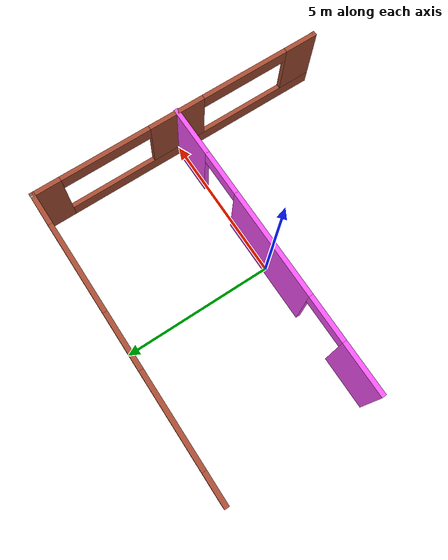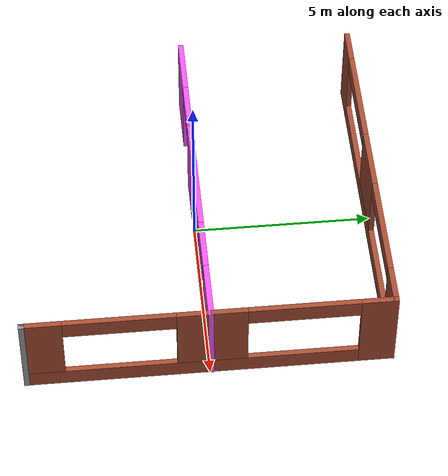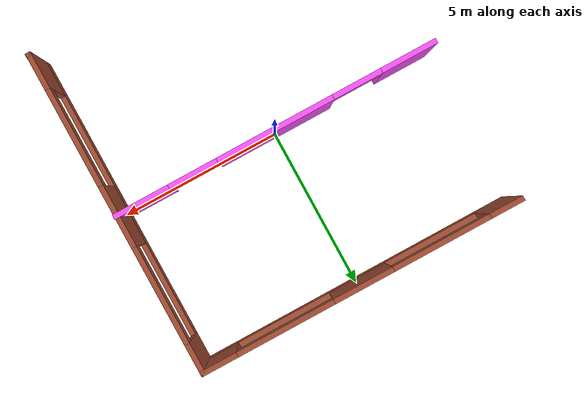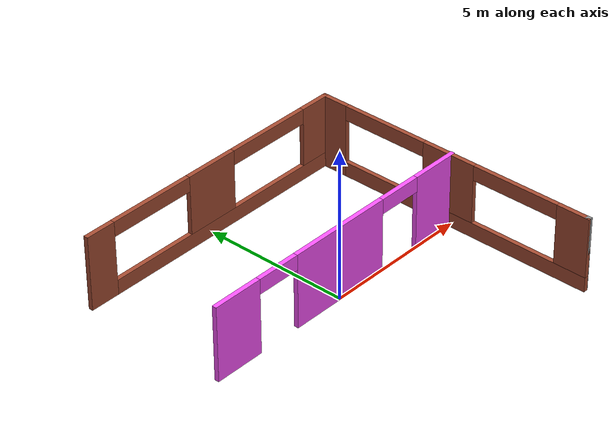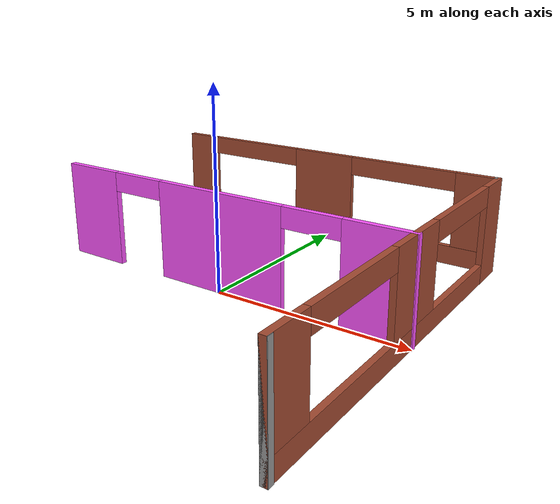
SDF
<sdf version="1.6">
 <model name="building">
  <link name="Wall_14">
   <pose>0.013 0.038 0 0 -0 0</pose>
   <visual name="Wall_14_Visual_0">
    <pose>-4.14875 0 1.25 0 -0 0</pose>
    <geometry><box><size>1.7025 0.15 2.5</size></box></geometry>
    <material>
     <script><uri>file://media/materials/scripts/gazebo.material</uri><name>Gazebo/Grey</name></script>
     <ambient>1 0.333333 1 1</ambient>
     <shader type="pixel"/>
     <diffuse>0.7 0.7 0.7 1</diffuse>
     <specular>0.01 0.01 0.01 1</specular>
     <emissive>0 0 0 1</emissive>
    </material>
    <meta><layer>0</layer></meta>
   </visual>
   <visual name="Wall_14_Visual_1">
    <pose>-0.00051 0 1.25 0 -0 0</pose>
    <geometry><box><size>3.59398 0.15 2.5</size></box></geometry>
    <material>
     <script><uri>file://media/materials/scripts/gazebo.material</uri><name>Gazebo/Grey</name></script>
     <ambient>1 0.333333 1 1</ambient>
     <shader type="pixel"/>
     <diffuse>0.7 0.7 0.7 1</diffuse>
     <specular>0.01 0.01 0.01 1</specular>
     <emissive>0 0 0 1</emissive>
    </material>
    <meta><layer>0</layer></meta>
   </visual>
   <visual name="Wall_14_Visual_2">
    <pose>4.14824 0 1.25 0 -0 0</pose>
    <geometry><box><size>1.70352 0.15 2.5</size></box></geometry>
    <material>
     <script><uri>file://media/materials/scripts/gazebo.material</uri><name>Gazebo/Grey</name></script>
     <ambient>1 0.333333 1 1</ambient>
     <shader type="pixel"/>
     <diffuse>0.7 0.7 0.7 1</diffuse>
     <specular>0.01 0.01 0.01 1</specular>
     <emissive>0 0 0 1</emissive>
    </material>
    <meta><layer>0</layer></meta>
   </visual>
   <visual name="Wall_14_Visual_4">
    <pose>2.54648 0 2.25 0 -0 0</pose>
    <geometry><box><size>1.5 0.15 0.5</size></box></geometry>
    <material>
     <script><uri>file://media/materials/scripts/gazebo.material</uri><name>Gazebo/Grey</name></script>
     <ambient>1 0.333333 1 1</ambient>
     <shader type="pixel"/>
     <diffuse>0.7 0.7 0.7 1</diffuse>
     <specular>0.01 0.01 0.01 1</specular>
     <emissive>0 0 0 1</emissive>
    </material>
    <meta><layer>0</layer></meta>
   </visual>
   <visual name="Wall_14_Visual_3">
    <pose>-2.5475 0 2.25 0 -0 0</pose>
    <geometry><box><size>1.5 0.15 0.5</size></box></geometry>
    <material>
     <script><uri>file://media/materials/scripts/gazebo.material</uri><name>Gazebo/Grey</name></script>
     <ambient>1 0.333333 1 1</ambient>
     <shader type="pixel"/>
     <diffuse>0.7 0.7 0.7 1</diffuse>
     <specular>0.01 0.01 0.01 1</specular>
     <emissive>0 0 0 1</emissive>
    </material>
    <meta><layer>0</layer></meta>
   </visual>
   <collision name="Wall_14_Collision_4">
    <pose>2.54648 0 2.25 0 -0 0</pose>
    <geometry><box><size>1.5 0.15 0.5</size></box></geometry>
    <surface>
     <friction>
      <ode><mu>1</mu><mu2>1</mu2><fdir1>0 0 0</fdir1><slip1>0</slip1><slip2>0</slip2></ode>
      <torsional>
       <coefficient>1</coefficient>
       <patch_radius>0</patch_radius>
       <surface_radius>0</surface_radius>
       <use_patch_radius>1</use_patch_radius>
       <ode><slip>0</slip></ode>
      </torsional>
     </friction>
     <bounce><restitution_coefficient>0</restitution_coefficient><threshold>1e+06</threshold></bounce>
     <contact>
      <collide_without_contact>0</collide_without_contact>
      <collide_without_contact_bitmask>1</collide_without_contact_bitmask>
      <collide_bitmask>1</collide_bitmask>
      <ode>
       <soft_cfm>0</soft_cfm>
       <soft_erp>0.2</soft_erp>
       <kp>1e+13</kp>
       <kd>1</kd>
       <max_vel>0.01</max_vel>
       <min_depth>0</min_depth>
      </ode>
      <bullet>
       <split_impulse>1</split_impulse>
       <split_impulse_penetration_threshold>-0.01</split_impulse_penetration_threshold>
       <soft_cfm>0</soft_cfm>
       <soft_erp>0.2</soft_erp>
       <kp>1e+13</kp>
       <kd>1</kd>
      </bullet>
     </contact>
    </surface>
   </collision>
   <collision name="Wall_14_Collision_3">
    <pose>-2.5475 0 2.25 0 -0 0</pose>
    <geometry><box><size>1.5 0.15 0.5</size></box></geometry>
    <surface>
     <friction>
      <ode><mu>1</mu><mu2>1</mu2><fdir1>0 0 0</fdir1><slip1>0</slip1><slip2>0</slip2></ode>
      <torsional>
       <coefficient>1</coefficient>
       <patch_radius>0</patch_radius>
       <surface_radius>0</surface_radius>
       <use_patch_radius>1</use_patch_radius>
       <ode><slip>0</slip></ode>
      </torsional>
     </friction>
     <bounce><restitution_coefficient>0</restitution_coefficient><threshold>1e+06</threshold></bounce>
     <contact>
      <collide_without_contact>0</collide_without_contact>
      <collide_without_contact_bitmask>1</collide_without_contact_bitmask>
      <collide_bitmask>1</collide_bitmask>
      <ode>
       <soft_cfm>0</soft_cfm>
       <soft_erp>0.2</soft_erp>
       <kp>1e+13</kp>
       <kd>1</kd>
       <max_vel>0.01</max_vel>
       <min_depth>0</min_depth>
      </ode>
      <bullet>
       <split_impulse>1</split_impulse>
       <split_impulse_penetration_threshold>-0.01</split_impulse_penetration_threshold>
       <soft_cfm>0</soft_cfm>
       <soft_erp>0.2</soft_erp>
       <kp>1e+13</kp>
       <kd>1</kd>
      </bullet>
     </contact>
    </surface>
   </collision>
   <collision name="Wall_14_Collision_0">
    <pose>-4.14875 0 1.25 0 -0 0</pose>
    <geometry><box><size>1.7025 0.15 2.5</size></box></geometry>
    <surface>
     <friction>
      <ode><mu>1</mu><mu2>1</mu2><fdir1>0 0 0</fdir1><slip1>0</slip1><slip2>0</slip2></ode>
      <torsional>
       <coefficient>1</coefficient>
       <patch_radius>0</patch_radius>
       <surface_radius>0</surface_radius>
       <use_patch_radius>1</use_patch_radius>
       <ode><slip>0</slip></ode>
      </torsional>
     </friction>
     <bounce><restitution_coefficient>0</restitution_coefficient><threshold>1e+06</threshold></bounce>
     <contact>
      <collide_without_contact>0</collide_without_contact>
      <collide_without_contact_bitmask>1</collide_without_contact_bitmask>
      <collide_bitmask>1</collide_bitmask>
      <ode>
       <soft_cfm>0</soft_cfm>
       <soft_erp>0.2</soft_erp>
       <kp>1e+13</kp>
       <kd>1</kd>
       <max_vel>0.01</max_vel>
       <min_depth>0</min_depth>
      </ode>
      <bullet>
       <split_impulse>1</split_impulse>
       <split_impulse_penetration_threshold>-0.01</split_impulse_penetration_threshold>
       <soft_cfm>0</soft_cfm>
       <soft_erp>0.2</soft_erp>
       <kp>1e+13</kp>
       <kd>1</kd>
      </bullet>
     </contact>
    </surface>
   </collision>
   <collision name="Wall_14_Collision_1">
    <pose>-0.00051 0 1.25 0 -0 0</pose>
    <geometry><box><size>3.59398 0.15 2.5</size></box></geometry>
    <surface>
     <friction>
      <ode><mu>1</mu><mu2>1</mu2><fdir1>0 0 0</fdir1><slip1>0</slip1><slip2>0</slip2></ode>
      <torsional>
       <coefficient>1</coefficient>
       <patch_radius>0</patch_radius>
       <surface_radius>0</surface_radius>
       <use_patch_radius>1</use_patch_radius>
       <ode><slip>0</slip></ode>
      </torsional>
     </friction>
     <bounce><restitution_coefficient>0</restitution_coefficient><threshold>1e+06</threshold></bounce>
     <contact>
      <collide_without_contact>0</collide_without_contact>
      <collide_without_contact_bitmask>1</collide_without_contact_bitmask>
      <collide_bitmask>1</collide_bitmask>
      <ode>
       <soft_cfm>0</soft_cfm>
       <soft_erp>0.2</soft_erp>
       <kp>1e+13</kp>
       <kd>1</kd>
       <max_vel>0.01</max_vel>
       <min_depth>0</min_depth>
      </ode>
      <bullet>
       <split_impulse>1</split_impulse>
       <split_impulse_penetration_threshold>-0.01</split_impulse_penetration_threshold>
       <soft_cfm>0</soft_cfm>
       <soft_erp>0.2</soft_erp>
       <kp>1e+13</kp>
       <kd>1</kd>
      </bullet>
     </contact>
    </surface>
   </collision>
   <collision name="Wall_14_Collision_2">
    <pose>4.14824 0 1.25 0 -0 0</pose>
    <geometry><box><size>1.70352 0.15 2.5</size></box></geometry>
    <surface>
     <friction>
      <ode><mu>1</mu><mu2>1</mu2><fdir1>0 0 0</fdir1><slip1>0</slip1><slip2>0</slip2></ode>
      <torsional>
       <coefficient>1</coefficient>
       <patch_radius>0</patch_radius>
       <surface_radius>0</surface_radius>
       <use_patch_radius>1</use_patch_radius>
       <ode><slip>0</slip></ode>
      </torsional>
     </friction>
     <bounce><restitution_coefficient>0</restitution_coefficient><threshold>1e+06</threshold></bounce>
     <contact>
      <collide_without_contact>0</collide_without_contact>
      <collide_without_contact_bitmask>1</collide_without_contact_bitmask>
      <collide_bitmask>1</collide_bitmask>
      <ode>
       <soft_cfm>0</soft_cfm>
       <soft_erp>0.2</soft_erp>
       <kp>1e+13</kp>
       <kd>1</kd>
       <max_vel>0.01</max_vel>
       <min_depth>0</min_depth>
      </ode>
      <bullet>
       <split_impulse>1</split_impulse>
       <split_impulse_penetration_threshold>-0.01</split_impulse_penetration_threshold>
       <soft_cfm>0</soft_cfm>
       <soft_erp>0.2</soft_erp>
       <kp>1e+13</kp>
       <kd>1</kd>
      </bullet>
     </contact>
    </surface>
   </collision>
  </link>
  <link name="Wall_2">
   <pose>4.912 -4.925 0 0 -0 0</pose>
   <visual name="Wall_2_Visual">
    <pose>0 0 1.25 0 -0 0</pose>
    <geometry><box><size>0.15 0.15 2.5</size></box></geometry>
    <material>
     <script><uri>file://media/materials/scripts/gazebo.material</uri><name>Gazebo/Grey</name></script>
     <ambient>1 1 1 1</ambient>
     <shader type="pixel"/>
     <diffuse>0.7 0.7 0.7 1</diffuse>
     <specular>0.01 0.01 0.01 1</specular>
     <emissive>0 0 0 1</emissive>
    </material>
    <meta><layer>0</layer></meta>
   </visual>
   <collision name="Wall_2_Collision">
    <pose>0 0 1.25 0 -0 0</pose>
    <geometry><box><size>0.15 0.15 2.5</size></box></geometry>
    <surface>
     <friction>
      <ode><mu>1</mu><mu2>1</mu2><fdir1>0 0 0</fdir1><slip1>0</slip1><slip2>0</slip2></ode>
      <torsional>
       <coefficient>1</coefficient>
       <patch_radius>0</patch_radius>
       <surface_radius>0</surface_radius>
       <use_patch_radius>1</use_patch_radius>
       <ode><slip>0</slip></ode>
      </torsional>
     </friction>
     <bounce><restitution_coefficient>0</restitution_coefficient><threshold>1e+06</threshold></bounce>
     <contact>
      <collide_without_contact>0</collide_without_contact>
      <collide_without_contact_bitmask>1</collide_without_contact_bitmask>
      <collide_bitmask>1</collide_bitmask>
      <ode>
       <soft_cfm>0</soft_cfm>
       <soft_erp>0.2</soft_erp>
       <kp>1e+13</kp>
       <kd>1</kd>
       <max_vel>0.01</max_vel>
       <min_depth>0</min_depth>
      </ode>
      <bullet>
       <split_impulse>1</split_impulse>
       <split_impulse_penetration_threshold>-0.01</split_impulse_penetration_threshold>
       <soft_cfm>0</soft_cfm>
       <soft_erp>0.2</soft_erp>
       <kp>1e+13</kp>
       <kd>1</kd>
      </bullet>
     </contact>
    </surface>
   </collision>
  </link>
  <link name="Wall_4">
   <pose>-0.013 4.925 0 0 -0 0</pose>
   <visual name="Wall_4_Visual_0">
    <pose>-4.48801 0 1.25 0 -0 0</pose>
    <geometry><box><size>1.02398 0.15 2.5</size></box></geometry>
    <material>
     <script><uri>file://media/materials/scripts/gazebo.material</uri><name>Gazebo/Bricks</name></script>
     <ambient>1 1 1 1</ambient>
     <shader type="pixel"/>
     <diffuse>1 1 1 1</diffuse>
     <specular>0.2 0.2 0.2 1</specular>
     <emissive>0 0 0 1</emissive>
    </material>
    <meta><layer>0</layer></meta>
   </visual>
   <visual name="Wall_4_Visual_1">
    <pose>0.511991 0 0.25 0 -0 0</pose>
    <geometry><box><size>8.97602 0.15 0.5</size></box></geometry>
    <material>
     <script><uri>file://media/materials/scripts/gazebo.material</uri><name>Gazebo/Bricks</name></script>
     <ambient>1 1 1 1</ambient>
     <shader type="pixel"/>
     <diffuse>1 1 1 1</diffuse>
     <specular>0.2 0.2 0.2 1</specular>
     <emissive>0 0 0 1</emissive>
    </material>
    <meta><layer>0</layer></meta>
   </visual>
   <visual name="Wall_4_Visual_2">
    <pose>-0.054103 0 1.5 0 -0 0</pose>
    <geometry><box><size>1.84383 0.15 2</size></box></geometry>
    <material>
     <script><uri>file://media/materials/scripts/gazebo.material</uri><name>Gazebo/Bricks</name></script>
     <ambient>1 1 1 1</ambient>
     <shader type="pixel"/>
     <diffuse>1 1 1 1</diffuse>
     <specular>0.2 0.2 0.2 1</specular>
     <emissive>0 0 0 1</emissive>
    </material>
    <meta><layer>0</layer></meta>
   </visual>
   <visual name="Wall_4_Visual_3">
    <pose>4.43391 0 1.5 0 -0 0</pose>
    <geometry><box><size>1.13219 0.15 2</size></box></geometry>
    <material>
     <script><uri>file://media/materials/scripts/gazebo.material</uri><name>Gazebo/Bricks</name></script>
     <ambient>1 1 1 1</ambient>
     <shader type="pixel"/>
     <diffuse>1 1 1 1</diffuse>
     <specular>0.2 0.2 0.2 1</specular>
     <emissive>0 0 0 1</emissive>
    </material>
    <meta><layer>0</layer></meta>
   </visual>
   <visual name="Wall_4_Visual_4">
    <pose>-2.47602 0 2.25 0 -0 0</pose>
    <geometry><box><size>3 0.15 0.5</size></box></geometry>
    <material>
     <script><uri>file://media/materials/scripts/gazebo.material</uri><name>Gazebo/Bricks</name></script>
     <ambient>1 1 1 1</ambient>
     <shader type="pixel"/>
     <diffuse>1 1 1 1</diffuse>
     <specular>0.2 0.2 0.2 1</specular>
     <emissive>0 0 0 1</emissive>
    </material>
    <meta><layer>0</layer></meta>
   </visual>
   <visual name="Wall_4_Visual_5">
    <pose>2.36781 0 2.25 0 -0 0</pose>
    <geometry><box><size>3 0.15 0.5</size></box></geometry>
    <material>
     <script><uri>file://media/materials/scripts/gazebo.material</uri><name>Gazebo/Bricks</name></script>
     <ambient>1 1 1 1</ambient>
     <shader type="pixel"/>
     <diffuse>1 1 1 1</diffuse>
     <specular>0.2 0.2 0.2 1</specular>
     <emissive>0 0 0 1</emissive>
    </material>
    <meta><layer>0</layer></meta>
   </visual>
   <collision name="Wall_4_Collision_1">
    <pose>0.511991 0 0.25 0 -0 0</pose>
    <geometry><box><size>8.97602 0.15 0.5</size></box></geometry>
    <surface>
     <friction>
      <ode><mu>1</mu><mu2>1</mu2><fdir1>0 0 0</fdir1><slip1>0</slip1><slip2>0</slip2></ode>
      <torsional>
       <coefficient>1</coefficient>
       <patch_radius>0</patch_radius>
       <surface_radius>0</surface_radius>
       <use_patch_radius>1</use_patch_radius>
       <ode><slip>0</slip></ode>
      </torsional>
     </friction>
     <bounce><restitution_coefficient>0</restitution_coefficient><threshold>1e+06</threshold></bounce>
     <contact>
      <collide_without_contact>0</collide_without_contact>
      <collide_without_contact_bitmask>1</collide_without_contact_bitmask>
      <collide_bitmask>1</collide_bitmask>
      <ode>
       <soft_cfm>0</soft_cfm>
       <soft_erp>0.2</soft_erp>
       <kp>1e+13</kp>
       <kd>1</kd>
       <max_vel>0.01</max_vel>
       <min_depth>0</min_depth>
      </ode>
      <bullet>
       <split_impulse>1</split_impulse>
       <split_impulse_penetration_threshold>-0.01</split_impulse_penetration_threshold>
       <soft_cfm>0</soft_cfm>
       <soft_erp>0.2</soft_erp>
       <kp>1e+13</kp>
       <kd>1</kd>
      </bullet>
     </contact>
    </surface>
   </collision>
   <collision name="Wall_4_Collision_2">
    <pose>-0.054103 0 1.5 0 -0 0</pose>
    <geometry><box><size>1.84383 0.15 2</size></box></geometry>
    <surface>
     <friction>
      <ode><mu>1</mu><mu2>1</mu2><fdir1>0 0 0</fdir1><slip1>0</slip1><slip2>0</slip2></ode>
      <torsional>
       <coefficient>1</coefficient>
       <patch_radius>0</patch_radius>
       <surface_radius>0</surface_radius>
       <use_patch_radius>1</use_patch_radius>
       <ode><slip>0</slip></ode>
      </torsional>
     </friction>
     <bounce><restitution_coefficient>0</restitution_coefficient><threshold>1e+06</threshold></bounce>
     <contact>
      <collide_without_contact>0</collide_without_contact>
      <collide_without_contact_bitmask>1</collide_without_contact_bitmask>
      <collide_bitmask>1</collide_bitmask>
      <ode>
       <soft_cfm>0</soft_cfm>
       <soft_erp>0.2</soft_erp>
       <kp>1e+13</kp>
       <kd>1</kd>
       <max_vel>0.01</max_vel>
       <min_depth>0</min_depth>
      </ode>
      <bullet>
       <split_impulse>1</split_impulse>
       <split_impulse_penetration_threshold>-0.01</split_impulse_penetration_threshold>
       <soft_cfm>0</soft_cfm>
       <soft_erp>0.2</soft_erp>
       <kp>1e+13</kp>
       <kd>1</kd>
      </bullet>
     </contact>
    </surface>
   </collision>
   <collision name="Wall_4_Collision_3">
    <pose>4.43391 0 1.5 0 -0 0</pose>
    <geometry><box><size>1.13219 0.15 2</size></box></geometry>
    <surface>
     <friction>
      <ode><mu>1</mu><mu2>1</mu2><fdir1>0 0 0</fdir1><slip1>0</slip1><slip2>0</slip2></ode>
      <torsional>
       <coefficient>1</coefficient>
       <patch_radius>0</patch_radius>
       <surface_radius>0</surface_radius>
       <use_patch_radius>1</use_patch_radius>
       <ode><slip>0</slip></ode>
      </torsional>
     </friction>
     <bounce><restitution_coefficient>0</restitution_coefficient><threshold>1e+06</threshold></bounce>
     <contact>
      <collide_without_contact>0</collide_without_contact>
      <collide_without_contact_bitmask>1</collide_without_contact_bitmask>
      <collide_bitmask>1</collide_bitmask>
      <ode>
       <soft_cfm>0</soft_cfm>
       <soft_erp>0.2</soft_erp>
       <kp>1e+13</kp>
       <kd>1</kd>
       <max_vel>0.01</max_vel>
       <min_depth>0</min_depth>
      </ode>
      <bullet>
       <split_impulse>1</split_impulse>
       <split_impulse_penetration_threshold>-0.01</split_impulse_penetration_threshold>
       <soft_cfm>0</soft_cfm>
       <soft_erp>0.2</soft_erp>
       <kp>1e+13</kp>
       <kd>1</kd>
      </bullet>
     </contact>
    </surface>
   </collision>
   <collision name="Wall_4_Collision_5">
    <pose>2.36781 0 2.25 0 -0 0</pose>
    <geometry><box><size>3 0.15 0.5</size></box></geometry>
    <surface>
     <friction>
      <ode><mu>1</mu><mu2>1</mu2><fdir1>0 0 0</fdir1><slip1>0</slip1><slip2>0</slip2></ode>
      <torsional>
       <coefficient>1</coefficient>
       <patch_radius>0</patch_radius>
       <surface_radius>0</surface_radius>
       <use_patch_radius>1</use_patch_radius>
       <ode><slip>0</slip></ode>
      </torsional>
     </friction>
     <bounce><restitution_coefficient>0</restitution_coefficient><threshold>1e+06</threshold></bounce>
     <contact>
      <collide_without_contact>0</collide_without_contact>
      <collide_without_contact_bitmask>1</collide_without_contact_bitmask>
      <collide_bitmask>1</collide_bitmask>
      <ode>
       <soft_cfm>0</soft_cfm>
       <soft_erp>0.2</soft_erp>
       <kp>1e+13</kp>
       <kd>1</kd>
       <max_vel>0.01</max_vel>
       <min_depth>0</min_depth>
      </ode>
      <bullet>
       <split_impulse>1</split_impulse>
       <split_impulse_penetration_threshold>-0.01</split_impulse_penetration_threshold>
       <soft_cfm>0</soft_cfm>
       <soft_erp>0.2</soft_erp>
       <kp>1e+13</kp>
       <kd>1</kd>
      </bullet>
     </contact>
    </surface>
   </collision>
   <collision name="Wall_4_Collision_4">
    <pose>-2.47602 0 2.25 0 -0 0</pose>
    <geometry><box><size>3 0.15 0.5</size></box></geometry>
    <surface>
     <friction>
      <ode><mu>1</mu><mu2>1</mu2><fdir1>0 0 0</fdir1><slip1>0</slip1><slip2>0</slip2></ode>
      <torsional>
       <coefficient>1</coefficient>
       <patch_radius>0</patch_radius>
       <surface_radius>0</surface_radius>
       <use_patch_radius>1</use_patch_radius>
       <ode><slip>0</slip></ode>
      </torsional>
     </friction>
     <bounce><restitution_coefficient>0</restitution_coefficient><threshold>1e+06</threshold></bounce>
     <contact>
      <collide_without_contact>0</collide_without_contact>
      <collide_without_contact_bitmask>1</collide_without_contact_bitmask>
      <collide_bitmask>1</collide_bitmask>
      <ode>
       <soft_cfm>0</soft_cfm>
       <soft_erp>0.2</soft_erp>
       <kp>1e+13</kp>
       <kd>1</kd>
       <max_vel>0.01</max_vel>
       <min_depth>0</min_depth>
      </ode>
      <bullet>
       <split_impulse>1</split_impulse>
       <split_impulse_penetration_threshold>-0.01</split_impulse_penetration_threshold>
       <soft_cfm>0</soft_cfm>
       <soft_erp>0.2</soft_erp>
       <kp>1e+13</kp>
       <kd>1</kd>
      </bullet>
     </contact>
    </surface>
   </collision>
   <collision name="Wall_4_Collision_0">
    <pose>-4.48801 0 1.25 0 -0 0</pose>
    <geometry><box><size>1.02398 0.15 2.5</size></box></geometry>
    <surface>
     <friction>
      <ode><mu>1</mu><mu2>1</mu2><fdir1>0 0 0</fdir1><slip1>0</slip1><slip2>0</slip2></ode>
      <torsional>
       <coefficient>1</coefficient>
       <patch_radius>0</patch_radius>
       <surface_radius>0</surface_radius>
       <use_patch_radius>1</use_patch_radius>
       <ode><slip>0</slip></ode>
      </torsional>
     </friction>
     <bounce><restitution_coefficient>0</restitution_coefficient><threshold>1e+06</threshold></bounce>
     <contact>
      <collide_without_contact>0</collide_without_contact>
      <collide_without_contact_bitmask>1</collide_without_contact_bitmask>
      <collide_bitmask>1</collide_bitmask>
      <ode>
       <soft_cfm>0</soft_cfm>
       <soft_erp>0.2</soft_erp>
       <kp>1e+13</kp>
       <kd>1</kd>
       <max_vel>0.01</max_vel>
       <min_depth>0</min_depth>
      </ode>
      <bullet>
       <split_impulse>1</split_impulse>
       <split_impulse_penetration_threshold>-0.01</split_impulse_penetration_threshold>
       <soft_cfm>0</soft_cfm>
       <soft_erp>0.2</soft_erp>
       <kp>1e+13</kp>
       <kd>1</kd>
      </bullet>
     </contact>
    </surface>
   </collision>
  </link>
  <link name="Wall_5">
   <pose>4.912 4.925 0 0 -0 0</pose>
   <visual name="Wall_5_Visual">
    <pose>0 0 1.25 0 -0 0</pose>
    <geometry><box><size>0.15 0.15 2.5</size></box></geometry>
    <material>
     <script><uri>file://media/materials/scripts/gazebo.material</uri><name>Gazebo/Grey</name></script>
     <ambient>1 1 1 1</ambient>
     <shader type="pixel"/>
     <diffuse>0.7 0.7 0.7 1</diffuse>
     <specular>0.01 0.01 0.01 1</specular>
     <emissive>0 0 0 1</emissive>
    </material>
    <meta><layer>0</layer></meta>
   </visual>
   <collision name="Wall_5_Collision">
    <pose>0 0 1.25 0 -0 0</pose>
    <geometry><box><size>0.15 0.15 2.5</size></box></geometry>
    <surface>
     <friction>
      <ode><mu>1</mu><mu2>1</mu2><fdir1>0 0 0</fdir1><slip1>0</slip1><slip2>0</slip2></ode>
      <torsional>
       <coefficient>1</coefficient>
       <patch_radius>0</patch_radius>
       <surface_radius>0</surface_radius>
       <use_patch_radius>1</use_patch_radius>
       <ode><slip>0</slip></ode>
      </torsional>
     </friction>
     <bounce><restitution_coefficient>0</restitution_coefficient><threshold>1e+06</threshold></bounce>
     <contact>
      <collide_without_contact>0</collide_without_contact>
      <collide_without_contact_bitmask>1</collide_without_contact_bitmask>
      <collide_bitmask>1</collide_bitmask>
      <ode>
       <soft_cfm>0</soft_cfm>
       <soft_erp>0.2</soft_erp>
       <kp>1e+13</kp>
       <kd>1</kd>
       <max_vel>0.01</max_vel>
       <min_depth>0</min_depth>
      </ode>
      <bullet>
       <split_impulse>1</split_impulse>
       <split_impulse_penetration_threshold>-0.01</split_impulse_penetration_threshold>
       <soft_cfm>0</soft_cfm>
       <soft_erp>0.2</soft_erp>
       <kp>1e+13</kp>
       <kd>1</kd>
      </bullet>
     </contact>
    </surface>
   </collision>
  </link>
  <link name="Wall_6">
   <pose>4.912 0 0 0 0 -1.5708</pose>
   <visual name="Wall_6_Visual_0">
    <pose>-4.50971 0 1.25 0 -0 0</pose>
    <geometry><box><size>0.980571 0.15 2.5</size></box></geometry>
    <material>
     <script><uri>file://media/materials/scripts/gazebo.material</uri><name>Gazebo/Bricks</name></script>
     <ambient>1 1 1 1</ambient>
     <shader type="pixel"/>
     <diffuse>1 1 1 1</diffuse>
     <specular>0.2 0.2 0.2 1</specular>
     <emissive>0 0 0 1</emissive>
    </material>
    <meta><layer>0</layer></meta>
   </visual>
   <visual name="Wall_6_Visual_2">
    <pose>-0.074773 0 1.5 0 -0 0</pose>
    <geometry><box><size>1.88931 0.15 2</size></box></geometry>
    <material>
     <script><uri>file://media/materials/scripts/gazebo.material</uri><name>Gazebo/Bricks</name></script>
     <ambient>1 1 1 1</ambient>
     <shader type="pixel"/>
     <diffuse>1 1 1 1</diffuse>
     <specular>0.2 0.2 0.2 1</specular>
     <emissive>0 0 0 1</emissive>
    </material>
    <meta><layer>0</layer></meta>
   </visual>
   <visual name="Wall_6_Visual_1">
    <pose>0.490285 0 0.25 0 -0 0</pose>
    <geometry><box><size>9.01943 0.15 0.5</size></box></geometry>
    <material>
     <script><uri>file://media/materials/scripts/gazebo.material</uri><name>Gazebo/Bricks</name></script>
     <ambient>1 1 1 1</ambient>
     <shader type="pixel"/>
     <diffuse>1 1 1 1</diffuse>
     <specular>0.2 0.2 0.2 1</specular>
     <emissive>0 0 0 1</emissive>
    </material>
    <meta><layer>0</layer></meta>
   </visual>
   <visual name="Wall_6_Visual_3">
    <pose>4.43494 0 1.5 0 -0 0</pose>
    <geometry><box><size>1.13012 0.15 2</size></box></geometry>
    <material>
     <script><uri>file://media/materials/scripts/gazebo.material</uri><name>Gazebo/Bricks</name></script>
     <ambient>1 1 1 1</ambient>
     <shader type="pixel"/>
     <diffuse>1 1 1 1</diffuse>
     <specular>0.2 0.2 0.2 1</specular>
     <emissive>0 0 0 1</emissive>
    </material>
    <meta><layer>0</layer></meta>
   </visual>
   <visual name="Wall_6_Visual_4">
    <pose>-2.51943 0 2.25 0 -0 0</pose>
    <geometry><box><size>3 0.15 0.5</size></box></geometry>
    <material>
     <script><uri>file://media/materials/scripts/gazebo.material</uri><name>Gazebo/Bricks</name></script>
     <ambient>1 1 1 1</ambient>
     <shader type="pixel"/>
     <diffuse>1 1 1 1</diffuse>
     <specular>0.2 0.2 0.2 1</specular>
     <emissive>0 0 0 1</emissive>
    </material>
    <meta><layer>0</layer></meta>
   </visual>
   <visual name="Wall_6_Visual_5">
    <pose>2.36988 0 2.25 0 -0 0</pose>
    <geometry><box><size>3 0.15 0.5</size></box></geometry>
    <material>
     <script><uri>file://media/materials/scripts/gazebo.material</uri><name>Gazebo/Bricks</name></script>
     <ambient>1 1 1 1</ambient>
     <shader type="pixel"/>
     <diffuse>1 1 1 1</diffuse>
     <specular>0.2 0.2 0.2 1</specular>
     <emissive>0 0 0 1</emissive>
    </material>
    <meta><layer>0</layer></meta>
   </visual>
   <collision name="Wall_6_Collision_0">
    <pose>-4.50971 0 1.25 0 -0 0</pose>
    <geometry><box><size>0.980571 0.15 2.5</size></box></geometry>
    <surface>
     <friction>
      <ode><mu>1</mu><mu2>1</mu2><fdir1>0 0 0</fdir1><slip1>0</slip1><slip2>0</slip2></ode>
      <torsional>
       <coefficient>1</coefficient>
       <patch_radius>0</patch_radius>
       <surface_radius>0</surface_radius>
       <use_patch_radius>1</use_patch_radius>
       <ode><slip>0</slip></ode>
      </torsional>
     </friction>
     <bounce><restitution_coefficient>0</restitution_coefficient><threshold>1e+06</threshold></bounce>
     <contact>
      <collide_without_contact>0</collide_without_contact>
      <collide_without_contact_bitmask>1</collide_without_contact_bitmask>
      <collide_bitmask>1</collide_bitmask>
      <ode>
       <soft_cfm>0</soft_cfm>
       <soft_erp>0.2</soft_erp>
       <kp>1e+13</kp>
       <kd>1</kd>
       <max_vel>0.01</max_vel>
       <min_depth>0</min_depth>
      </ode>
      <bullet>
       <split_impulse>1</split_impulse>
       <split_impulse_penetration_threshold>-0.01</split_impulse_penetration_threshold>
       <soft_cfm>0</soft_cfm>
       <soft_erp>0.2</soft_erp>
       <kp>1e+13</kp>
       <kd>1</kd>
      </bullet>
     </contact>
    </surface>
   </collision>
   <collision name="Wall_6_Collision_1">
    <pose>0.490285 0 0.25 0 -0 0</pose>
    <geometry><box><size>9.01943 0.15 0.5</size></box></geometry>
    <surface>
     <friction>
      <ode><mu>1</mu><mu2>1</mu2><fdir1>0 0 0</fdir1><slip1>0</slip1><slip2>0</slip2></ode>
      <torsional>
       <coefficient>1</coefficient>
       <patch_radius>0</patch_radius>
       <surface_radius>0</surface_radius>
       <use_patch_radius>1</use_patch_radius>
       <ode><slip>0</slip></ode>
      </torsional>
     </friction>
     <bounce><restitution_coefficient>0</restitution_coefficient><threshold>1e+06</threshold></bounce>
     <contact>
      <collide_without_contact>0</collide_without_contact>
      <collide_without_contact_bitmask>1</collide_without_contact_bitmask>
      <collide_bitmask>1</collide_bitmask>
      <ode>
       <soft_cfm>0</soft_cfm>
       <soft_erp>0.2</soft_erp>
       <kp>1e+13</kp>
       <kd>1</kd>
       <max_vel>0.01</max_vel>
       <min_depth>0</min_depth>
      </ode>
      <bullet>
       <split_impulse>1</split_impulse>
       <split_impulse_penetration_threshold>-0.01</split_impulse_penetration_threshold>
       <soft_cfm>0</soft_cfm>
       <soft_erp>0.2</soft_erp>
       <kp>1e+13</kp>
       <kd>1</kd>
      </bullet>
     </contact>
    </surface>
   </collision>
   <collision name="Wall_6_Collision_2">
    <pose>-0.074773 0 1.5 0 -0 0</pose>
    <geometry><box><size>1.88931 0.15 2</size></box></geometry>
    <surface>
     <friction>
      <ode><mu>1</mu><mu2>1</mu2><fdir1>0 0 0</fdir1><slip1>0</slip1><slip2>0</slip2></ode>
      <torsional>
       <coefficient>1</coefficient>
       <patch_radius>0</patch_radius>
       <surface_radius>0</surface_radius>
       <use_patch_radius>1</use_patch_radius>
       <ode><slip>0</slip></ode>
      </torsional>
     </friction>
     <bounce><restitution_coefficient>0</restitution_coefficient><threshold>1e+06</threshold></bounce>
     <contact>
      <collide_without_contact>0</collide_without_contact>
      <collide_without_contact_bitmask>1</collide_without_contact_bitmask>
      <collide_bitmask>1</collide_bitmask>
      <ode>
       <soft_cfm>0</soft_cfm>
       <soft_erp>0.2</soft_erp>
       <kp>1e+13</kp>
       <kd>1</kd>
       <max_vel>0.01</max_vel>
       <min_depth>0</min_depth>
      </ode>
      <bullet>
       <split_impulse>1</split_impulse>
       <split_impulse_penetration_threshold>-0.01</split_impulse_penetration_threshold>
       <soft_cfm>0</soft_cfm>
       <soft_erp>0.2</soft_erp>
       <kp>1e+13</kp>
       <kd>1</kd>
      </bullet>
     </contact>
    </surface>
   </collision>
   <collision name="Wall_6_Collision_3">
    <pose>4.43494 0 1.5 0 -0 0</pose>
    <geometry><box><size>1.13012 0.15 2</size></box></geometry>
    <surface>
     <friction>
      <ode><mu>1</mu><mu2>1</mu2><fdir1>0 0 0</fdir1><slip1>0</slip1><slip2>0</slip2></ode>
      <torsional>
       <coefficient>1</coefficient>
       <patch_radius>0</patch_radius>
       <surface_radius>0</surface_radius>
       <use_patch_radius>1</use_patch_radius>
       <ode><slip>0</slip></ode>
      </torsional>
     </friction>
     <bounce><restitution_coefficient>0</restitution_coefficient><threshold>1e+06</threshold></bounce>
     <contact>
      <collide_without_contact>0</collide_without_contact>
      <collide_without_contact_bitmask>1</collide_without_contact_bitmask>
      <collide_bitmask>1</collide_bitmask>
      <ode>
       <soft_cfm>0</soft_cfm>
       <soft_erp>0.2</soft_erp>
       <kp>1e+13</kp>
       <kd>1</kd>
       <max_vel>0.01</max_vel>
       <min_depth>0</min_depth>
      </ode>
      <bullet>
       <split_impulse>1</split_impulse>
       <split_impulse_penetration_threshold>-0.01</split_impulse_penetration_threshold>
       <soft_cfm>0</soft_cfm>
       <soft_erp>0.2</soft_erp>
       <kp>1e+13</kp>
       <kd>1</kd>
      </bullet>
     </contact>
    </surface>
   </collision>
   <collision name="Wall_6_Collision_4">
    <pose>-2.51943 0 2.25 0 -0 0</pose>
    <geometry><box><size>3 0.15 0.5</size></box></geometry>
    <surface>
     <friction>
      <ode><mu>1</mu><mu2>1</mu2><fdir1>0 0 0</fdir1><slip1>0</slip1><slip2>0</slip2></ode>
      <torsional>
       <coefficient>1</coefficient>
       <patch_radius>0</patch_radius>
       <surface_radius>0</surface_radius>
       <use_patch_radius>1</use_patch_radius>
       <ode><slip>0</slip></ode>
      </torsional>
     </friction>
     <bounce><restitution_coefficient>0</restitution_coefficient><threshold>1e+06</threshold></bounce>
     <contact>
      <collide_without_contact>0</collide_without_contact>
      <collide_without_contact_bitmask>1</collide_without_contact_bitmask>
      <collide_bitmask>1</collide_bitmask>
      <ode>
       <soft_cfm>0</soft_cfm>
       <soft_erp>0.2</soft_erp>
       <kp>1e+13</kp>
       <kd>1</kd>
       <max_vel>0.01</max_vel>
       <min_depth>0</min_depth>
      </ode>
      <bullet>
       <split_impulse>1</split_impulse>
       <split_impulse_penetration_threshold>-0.01</split_impulse_penetration_threshold>
       <soft_cfm>0</soft_cfm>
       <soft_erp>0.2</soft_erp>
       <kp>1e+13</kp>
       <kd>1</kd>
      </bullet>
     </contact>
    </surface>
   </collision>
   <collision name="Wall_6_Collision_5">
    <pose>2.36988 0 2.25 0 -0 0</pose>
    <geometry><box><size>3 0.15 0.5</size></box></geometry>
    <surface>
     <friction>
      <ode><mu>1</mu><mu2>1</mu2><fdir1>0 0 0</fdir1><slip1>0</slip1><slip2>0</slip2></ode>
      <torsional>
       <coefficient>1</coefficient>
       <patch_radius>0</patch_radius>
       <surface_radius>0</surface_radius>
       <use_patch_radius>1</use_patch_radius>
       <ode><slip>0</slip></ode>
      </torsional>
     </friction>
     <bounce><restitution_coefficient>0</restitution_coefficient><threshold>1e+06</threshold></bounce>
     <contact>
      <collide_without_contact>0</collide_without_contact>
      <collide_without_contact_bitmask>1</collide_without_contact_bitmask>
      <collide_bitmask>1</collide_bitmask>
      <ode>
       <soft_cfm>0</soft_cfm>
       <soft_erp>0.2</soft_erp>
       <kp>1e+13</kp>
       <kd>1</kd>
       <max_vel>0.01</max_vel>
       <min_depth>0</min_depth>
      </ode>
      <bullet>
       <split_impulse>1</split_impulse>
       <split_impulse_penetration_threshold>-0.01</split_impulse_penetration_threshold>
       <soft_cfm>0</soft_cfm>
       <soft_erp>0.2</soft_erp>
       <kp>1e+13</kp>
       <kd>1</kd>
      </bullet>
     </contact>
    </surface>
   </collision>
  </link>
  <link name="Wall_7">
   <pose>4.917 -4.925 0 0 -0 0</pose>
   <visual name="Wall_7_Visual">
    <pose>0 0 1.25 0 -0 0</pose>
    <geometry><box><size>0.16 0.15 2.5</size></box></geometry>
    <material>
     <script><uri>file://media/materials/scripts/gazebo.material</uri><name>Gazebo/Grey</name></script>
     <ambient>1 1 1 1</ambient>
     <shader type="pixel"/>
     <diffuse>0.7 0.7 0.7 1</diffuse>
     <specular>0.01 0.01 0.01 1</specular>
     <emissive>0 0 0 1</emissive>
    </material>
    <meta><layer>0</layer></meta>
   </visual>
   <collision name="Wall_7_Collision">
    <pose>0 0 1.25 0 -0 0</pose>
    <geometry><box><size>0.16 0.15 2.5</size></box></geometry>
    <surface>
     <friction>
      <ode><mu>1</mu><mu2>1</mu2><fdir1>0 0 0</fdir1><slip1>0</slip1><slip2>0</slip2></ode>
      <torsional>
       <coefficient>1</coefficient>
       <patch_radius>0</patch_radius>
       <surface_radius>0</surface_radius>
       <use_patch_radius>1</use_patch_radius>
       <ode><slip>0</slip></ode>
      </torsional>
     </friction>
     <bounce><restitution_coefficient>0</restitution_coefficient><threshold>1e+06</threshold></bounce>
     <contact>
      <collide_without_contact>0</collide_without_contact>
      <collide_without_contact_bitmask>1</collide_without_contact_bitmask>
      <collide_bitmask>1</collide_bitmask>
      <ode>
       <soft_cfm>0</soft_cfm>
       <soft_erp>0.2</soft_erp>
       <kp>1e+13</kp>
       <kd>1</kd>
       <max_vel>0.01</max_vel>
       <min_depth>0</min_depth>
      </ode>
      <bullet>
       <split_impulse>1</split_impulse>
       <split_impulse_penetration_threshold>-0.01</split_impulse_penetration_threshold>
       <soft_cfm>0</soft_cfm>
       <soft_erp>0.2</soft_erp>
       <kp>1e+13</kp>
       <kd>1</kd>
      </bullet>
     </contact>
    </surface>
   </collision>
  </link>
  <static>1</static>
 </model>
</sdf>
